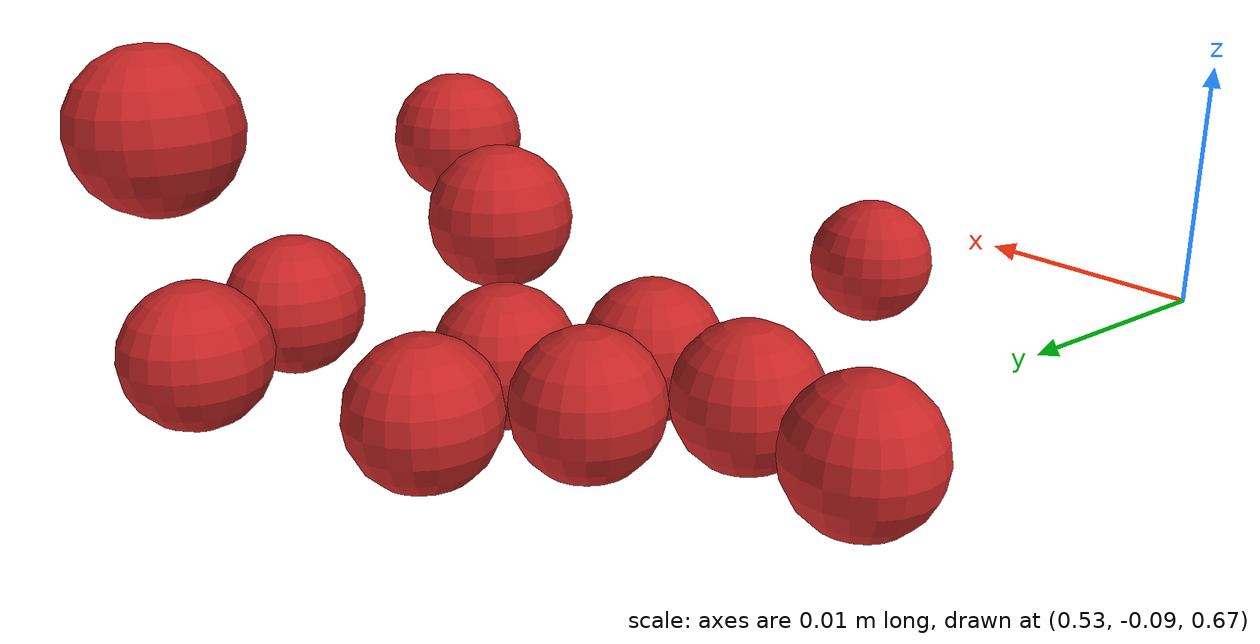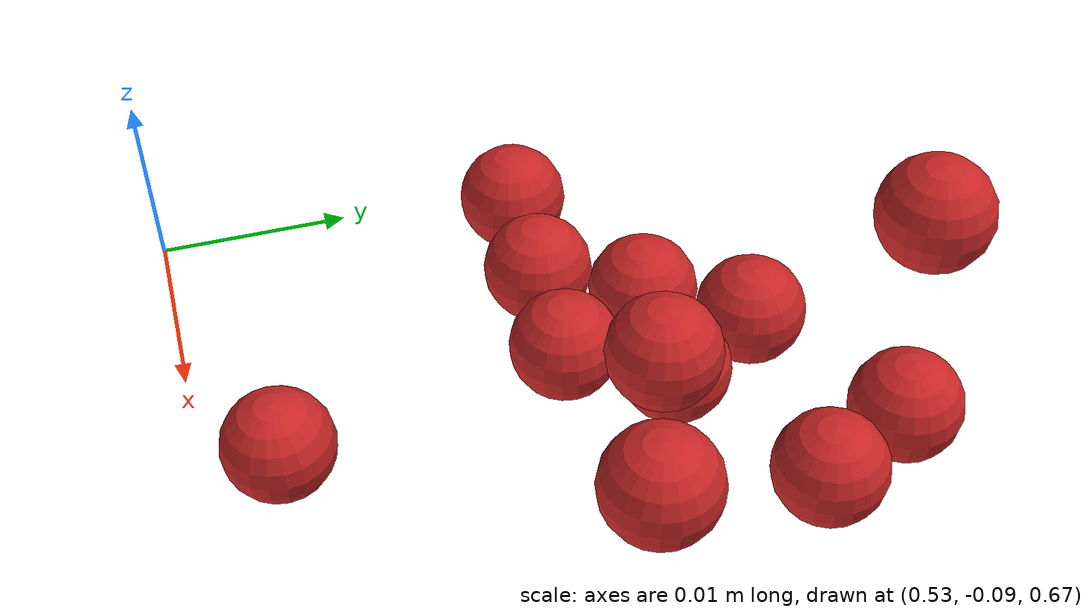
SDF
<sdf version="1.4">
 <world name="default">
  <model name="ground_plane">
   <static>1</static>
   <link name="link">
    <collision name="collision">
     <geometry><plane><normal>0 0 1</normal><size>100 100</size></plane></geometry>
     <surface><friction><ode><mu>100</mu><mu2>50</mu2></ode></friction></surface>
    </collision>
    <visual name="visual">
     <cast_shadows>0</cast_shadows>
     <geometry><plane><normal>0 0 1</normal><size>100 100</size></plane></geometry>
     <material>
      <script><uri>file://media/materials/scripts/gazebo.material</uri><name>Gazebo/Grey</name></script>
     </material>
    </visual>
    <velocity_decay><linear>0</linear><angular>0</angular></velocity_decay>
   </link>
  </model>
  <model name="sphere0">
   <pose>-0.000751 -0.006096 -0.063583 0.008961 -0.001297 -0.00673</pose>
   <link name="link">
    <pose>0.54076 -0.048781 0.732288 0 -0 0</pose>
    <inertial>
     <mass>0.0000001</mass>
     <inertia><ixx>0.00004</ixx><ixy>0</ixy><ixz>0</ixz><iyy>0.00004</iyy><iyz>0</iyz><izz>0.00004</izz></inertia>
    </inertial>
    <collision name="collision">
     <surface>
      <contact><ode><kp>1e+10</kp><kd>1</kd></ode></contact>
      <friction><ode><mu>0.01</mu><mu2>0.01</mu2></ode></friction>
     </surface>
     <geometry><sphere><radius>0.003</radius></sphere></geometry>
    </collision>
    <visual name="visual">
     <geometry><sphere><radius>0.003</radius></sphere></geometry>
     <material>
      <script><uri>file://media/materials/scripts/gazebo.material</uri><name>Gazebo/Red</name></script>
     </material>
    </visual>
    <velocity_decay><linear>0</linear><angular>0</angular></velocity_decay>
   </link>
   <static>0</static>
  </model>
  <model name="sphere32">
   <pose>0.001349 -0.015082 -0.075275 -0.000812 0.000243 -0.013007</pose>
   <link name="link">
    <pose>0.54076 -0.048781 0.744288 0 -0 0</pose>
    <inertial>
     <mass>0.0000001</mass>
     <inertia><ixx>0.00004</ixx><ixy>0</ixy><ixz>0</ixz><iyy>0.00004</iyy><iyz>0</iyz><izz>0.00004</izz></inertia>
    </inertial>
    <collision name="collision">
     <surface>
      <contact><ode><kp>1e+10</kp><kd>1</kd></ode></contact>
      <friction><ode><mu>0.01</mu><mu2>0.01</mu2></ode></friction>
     </surface>
     <geometry><sphere><radius>0.003</radius></sphere></geometry>
    </collision>
    <visual name="visual">
     <geometry><sphere><radius>0.003</radius></sphere></geometry>
     <material>
      <script><uri>file://media/materials/scripts/gazebo.material</uri><name>Gazebo/Red</name></script>
     </material>
    </visual>
    <velocity_decay><linear>0</linear><angular>0</angular></velocity_decay>
   </link>
   <static>0</static>
  </model>
  <model name="sphere50">
   <pose>0.002375 -0.017812 -0.081916 0.001013 -0.009992 0.000818</pose>
   <link name="link">
    <pose>0.55276 -0.048781 0.750288 0 -0 0</pose>
    <inertial>
     <mass>0.0000001</mass>
     <inertia><ixx>0.00004</ixx><ixy>0</ixy><ixz>0</ixz><iyy>0.00004</iyy><iyz>0</iyz><izz>0.00004</izz></inertia>
    </inertial>
    <collision name="collision">
     <surface>
      <contact><ode><kp>1e+10</kp><kd>1</kd></ode></contact>
      <friction><ode><mu>0.01</mu><mu2>0.01</mu2></ode></friction>
     </surface>
     <geometry><sphere><radius>0.003</radius></sphere></geometry>
    </collision>
    <visual name="visual">
     <geometry><sphere><radius>0.003</radius></sphere></geometry>
     <material>
      <script><uri>file://media/materials/scripts/gazebo.material</uri><name>Gazebo/Red</name></script>
     </material>
    </visual>
    <velocity_decay><linear>0</linear><angular>0</angular></velocity_decay>
   </link>
   <static>0</static>
  </model>
  <model name="sphere58">
   <pose>-0.002485 -0.029786 -0.085518 -0.001903 -0.007443 6e-06</pose>
   <link name="link">
    <pose>0.55276 -0.036781 0.750288 0 -0 0</pose>
    <inertial>
     <mass>0.0000001</mass>
     <inertia><ixx>0.00004</ixx><ixy>0</ixy><ixz>0</ixz><iyy>0.00004</iyy><iyz>0</iyz><izz>0.00004</izz></inertia>
    </inertial>
    <collision name="collision">
     <surface>
      <contact><ode><kp>1e+10</kp><kd>1</kd></ode></contact>
      <friction><ode><mu>0.01</mu><mu2>0.01</mu2></ode></friction>
     </surface>
     <geometry><sphere><radius>0.003</radius></sphere></geometry>
    </collision>
    <visual name="visual">
     <geometry><sphere><radius>0.003</radius></sphere></geometry>
     <material>
      <script><uri>file://media/materials/scripts/gazebo.material</uri><name>Gazebo/Red</name></script>
     </material>
    </visual>
    <velocity_decay><linear>0</linear><angular>0</angular></velocity_decay>
   </link>
   <static>0</static>
  </model>
  <model name="sphere80">
   <pose>0.004286 -0.018318 -0.103883 0.004479 -0.02016 0.000706</pose>
   <link name="link">
    <pose>0.54076 -0.048781 0.762288 0 -0 0</pose>
    <inertial>
     <mass>0.0000001</mass>
     <inertia><ixx>0.00004</ixx><ixy>0</ixy><ixz>0</ixz><iyy>0.00004</iyy><iyz>0</iyz><izz>0.00004</izz></inertia>
    </inertial>
    <collision name="collision">
     <surface>
      <contact><ode><kp>1e+10</kp><kd>1</kd></ode></contact>
      <friction><ode><mu>0.01</mu><mu2>0.01</mu2></ode></friction>
     </surface>
     <geometry><sphere><radius>0.003</radius></sphere></geometry>
    </collision>
    <visual name="visual">
     <geometry><sphere><radius>0.003</radius></sphere></geometry>
     <material>
      <script><uri>file://media/materials/scripts/gazebo.material</uri><name>Gazebo/Red</name></script>
     </material>
    </visual>
    <velocity_decay><linear>0</linear><angular>0</angular></velocity_decay>
   </link>
   <static>0</static>
  </model>
  <model name="sphere82">
   <pose>-0.000356 -0.032263 -0.098748 0.007298 -0.010514 0.001045</pose>
   <link name="link">
    <pose>0.55276 -0.048781 0.762288 0 -0 0</pose>
    <inertial>
     <mass>0.0000001</mass>
     <inertia><ixx>0.00004</ixx><ixy>0</ixy><ixz>0</ixz><iyy>0.00004</iyy><iyz>0</iyz><izz>0.00004</izz></inertia>
    </inertial>
    <collision name="collision">
     <surface>
      <contact><ode><kp>1e+10</kp><kd>1</kd></ode></contact>
      <friction><ode><mu>0.01</mu><mu2>0.01</mu2></ode></friction>
     </surface>
     <geometry><sphere><radius>0.003</radius></sphere></geometry>
    </collision>
    <visual name="visual">
     <geometry><sphere><radius>0.003</radius></sphere></geometry>
     <material>
      <script><uri>file://media/materials/scripts/gazebo.material</uri><name>Gazebo/Red</name></script>
     </material>
    </visual>
    <velocity_decay><linear>0</linear><angular>0</angular></velocity_decay>
   </link>
   <static>0</static>
  </model>
  <model name="sphere86">
   <pose>0.003685 -0.025316 -0.086831 0.002085 0.000178 -0.000474</pose>
   <link name="link">
    <pose>0.55276 -0.042781 0.762288 0 -0 0</pose>
    <inertial>
     <mass>0.0000001</mass>
     <inertia><ixx>0.00004</ixx><ixy>0</ixy><ixz>0</ixz><iyy>0.00004</iyy><iyz>0</iyz><izz>0.00004</izz></inertia>
    </inertial>
    <collision name="collision">
     <surface>
      <contact><ode><kp>1e+10</kp><kd>1</kd></ode></contact>
      <friction><ode><mu>0.01</mu><mu2>0.01</mu2></ode></friction>
     </surface>
     <geometry><sphere><radius>0.003</radius></sphere></geometry>
    </collision>
    <visual name="visual">
     <geometry><sphere><radius>0.003</radius></sphere></geometry>
     <material>
      <script><uri>file://media/materials/scripts/gazebo.material</uri><name>Gazebo/Red</name></script>
     </material>
    </visual>
    <velocity_decay><linear>0</linear><angular>0</angular></velocity_decay>
   </link>
   <static>0</static>
  </model>
  <model name="sphere107">
   <pose>-0.002055 -0.015682 -0.102916 0.006047 -0.007956 0.0042</pose>
   <link name="link">
    <pose>0.55876 -0.036781 0.768288 0 -0 0</pose>
    <inertial>
     <mass>0.0000001</mass>
     <inertia><ixx>0.00004</ixx><ixy>0</ixy><ixz>0</ixz><iyy>0.00004</iyy><iyz>0</iyz><izz>0.00004</izz></inertia>
    </inertial>
    <collision name="collision">
     <surface>
      <contact><ode><kp>1e+10</kp><kd>1</kd></ode></contact>
      <friction><ode><mu>0.01</mu><mu2>0.01</mu2></ode></friction>
     </surface>
     <geometry><sphere><radius>0.003</radius></sphere></geometry>
    </collision>
    <visual name="visual">
     <geometry><sphere><radius>0.003</radius></sphere></geometry>
     <material>
      <script><uri>file://media/materials/scripts/gazebo.material</uri><name>Gazebo/Red</name></script>
     </material>
    </visual>
    <velocity_decay><linear>0</linear><angular>0</angular></velocity_decay>
   </link>
   <static>0</static>
  </model>
  <model name="sphere128">
   <pose>0.004343 -0.041611 -0.118842 -0.015715 -0.012715 0.014909</pose>
   <link name="link">
    <pose>0.54076 -0.048781 0.780288 0 -0 0</pose>
    <inertial>
     <mass>0.0000001</mass>
     <inertia><ixx>0.00004</ixx><ixy>0</ixy><ixz>0</ixz><iyy>0.00004</iyy><iyz>0</iyz><izz>0.00004</izz></inertia>
    </inertial>
    <collision name="collision">
     <surface>
      <contact><ode><kp>1e+10</kp><kd>1</kd></ode></contact>
      <friction><ode><mu>0.01</mu><mu2>0.01</mu2></ode></friction>
     </surface>
     <geometry><sphere><radius>0.003</radius></sphere></geometry>
    </collision>
    <visual name="visual">
     <geometry><sphere><radius>0.003</radius></sphere></geometry>
     <material>
      <script><uri>file://media/materials/scripts/gazebo.material</uri><name>Gazebo/Red</name></script>
     </material>
    </visual>
    <velocity_decay><linear>0</linear><angular>0</angular></velocity_decay>
   </link>
   <static>0</static>
  </model>
  <model name="sphere138">
   <pose>0.002071 -0.022816 -0.111377 0.006864 -0.001957 0.008905</pose>
   <link name="link">
    <pose>0.55276 -0.036781 0.780288 0 -0 0</pose>
    <inertial>
     <mass>0.0000001</mass>
     <inertia><ixx>0.00004</ixx><ixy>0</ixy><ixz>0</ixz><iyy>0.00004</iyy><iyz>0</iyz><izz>0.00004</izz></inertia>
    </inertial>
    <collision name="collision">
     <surface>
      <contact><ode><kp>1e+10</kp><kd>1</kd></ode></contact>
      <friction><ode><mu>0.01</mu><mu2>0.01</mu2></ode></friction>
     </surface>
     <geometry><sphere><radius>0.003</radius></sphere></geometry>
    </collision>
    <visual name="visual">
     <geometry><sphere><radius>0.003</radius></sphere></geometry>
     <material>
      <script><uri>file://media/materials/scripts/gazebo.material</uri><name>Gazebo/Red</name></script>
     </material>
    </visual>
    <velocity_decay><linear>0</linear><angular>0</angular></velocity_decay>
   </link>
   <static>0</static>
  </model>
  <model name="sphere144">
   <pose>-0.002398 -0.007253 -0.114788 0.005696 0.00422 0.001112</pose>
   <link name="link">
    <pose>0.54076 -0.048781 0.786288 0 -0 0</pose>
    <inertial>
     <mass>0.0000001</mass>
     <inertia><ixx>0.00004</ixx><ixy>0</ixy><ixz>0</ixz><iyy>0.00004</iyy><iyz>0</iyz><izz>0.00004</izz></inertia>
    </inertial>
    <collision name="collision">
     <surface>
      <contact><ode><kp>1e+10</kp><kd>1</kd></ode></contact>
      <friction><ode><mu>0.01</mu><mu2>0.01</mu2></ode></friction>
     </surface>
     <geometry><sphere><radius>0.003</radius></sphere></geometry>
    </collision>
    <visual name="visual">
     <geometry><sphere><radius>0.003</radius></sphere></geometry>
     <material>
      <script><uri>file://media/materials/scripts/gazebo.material</uri><name>Gazebo/Red</name></script>
     </material>
    </visual>
    <velocity_decay><linear>0</linear><angular>0</angular></velocity_decay>
   </link>
   <static>0</static>
  </model>
  <model name="sphere157">
   <pose>-0.000361 -0.027628 -0.106578 -0.006303 0.001026 0.000334</pose>
   <link name="link">
    <pose>0.54676 -0.030781 0.786288 0 -0 0</pose>
    <inertial>
     <mass>0.0000001</mass>
     <inertia><ixx>0.00004</ixx><ixy>0</ixy><ixz>0</ixz><iyy>0.00004</iyy><iyz>0</iyz><izz>0.00004</izz></inertia>
    </inertial>
    <collision name="collision">
     <surface>
      <contact><ode><kp>1e+10</kp><kd>1</kd></ode></contact>
      <friction><ode><mu>0.01</mu><mu2>0.01</mu2></ode></friction>
     </surface>
     <geometry><sphere><radius>0.003</radius></sphere></geometry>
    </collision>
    <visual name="visual">
     <geometry><sphere><radius>0.003</radius></sphere></geometry>
     <material>
      <script><uri>file://media/materials/scripts/gazebo.material</uri><name>Gazebo/Red</name></script>
     </material>
    </visual>
    <velocity_decay><linear>0</linear><angular>0</angular></velocity_decay>
   </link>
   <static>0</static>
  </model>
 </world>
</sdf>
